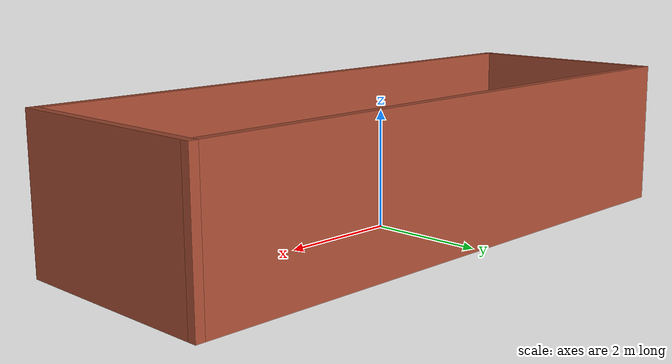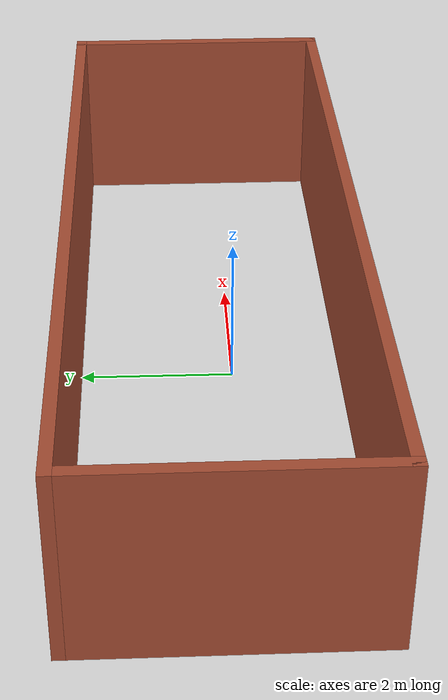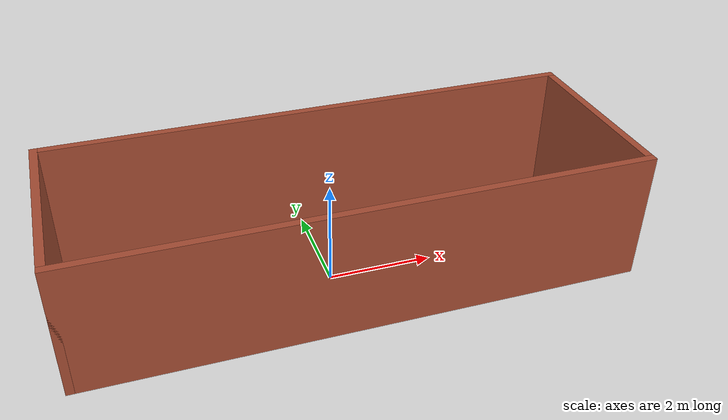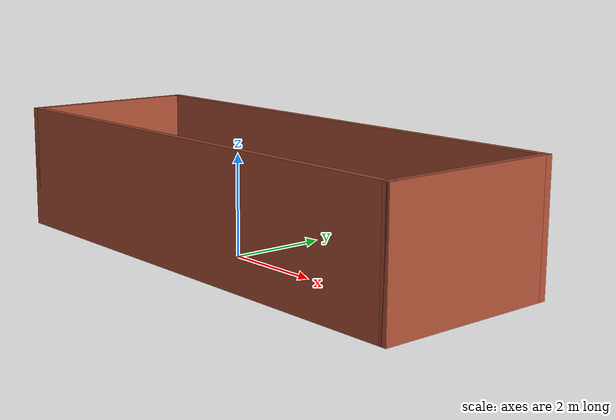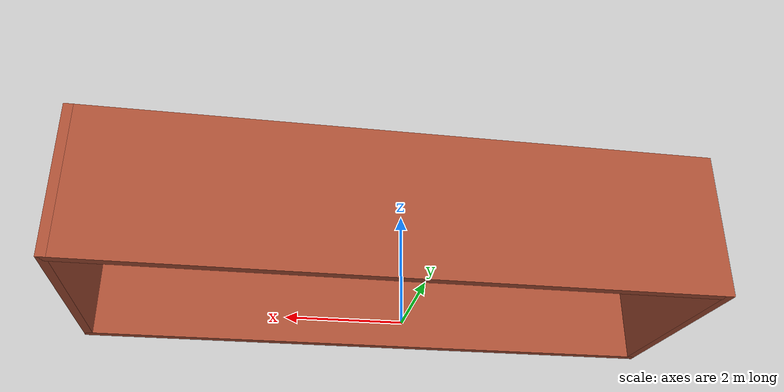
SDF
<?xml version='1.0'?>
<sdf version='1.6'>
  <model name='brick_shack'>
    <pose frame=''>0.285 0.28 0 0 -0 0</pose>
    <link name='Wall_0'>
      <collision name='Wall_0_Collision'>
        <geometry>
          <box>
            <size>10.5 0.15 2.5</size>
          </box>
        </geometry>
        <pose frame=''>0 0 1.25 0 -0 0</pose>
      </collision>
      <visual name='Wall_0_Visual'>
        <pose frame=''>0 0 1.25 0 -0 0</pose>
        <geometry>
          <box>
            <size>10.5 0.15 2.5</size>
          </box>
        </geometry>
        <material>
          <script>
            <uri>file://media/materials/scripts/gazebo.material</uri>
            <name>Gazebo/Bricks</name>
          </script>
          <ambient>1 1 1 1</ambient>
        </material>
        <meta>
          <layer>0</layer>
        </meta>
      </visual>
      <pose frame=''>-0 -1.8 0 0 -0 0</pose>
    </link>
    <link name='Wall_2'>
      <collision name='Wall_2_Collision'>
        <geometry>
          <box>
            <size>3.75 0.15 2.5</size>
          </box>
        </geometry>
        <pose frame=''>0 0 1.25 0 -0 0</pose>
      </collision>
      <visual name='Wall_2_Visual'>
        <pose frame=''>0 0 1.25 0 -0 0</pose>
        <geometry>
          <box>
            <size>3.75 0.15 2.5</size>
          </box>
        </geometry>
        <material>
          <script>
            <uri>file://media/materials/scripts/gazebo.material</uri>
            <name>Gazebo/Bricks</name>
          </script>
          <ambient>1 1 1 1</ambient>
        </material>
        <meta>
          <layer>0</layer>
        </meta>
      </visual>
      <pose frame=''>5.175 0 0 0 -0 1.5708</pose>
    </link>
    <link name='Wall_3'>
      <collision name='Wall_3_Collision'>
        <geometry>
          <box>
            <size>10.5 0.15 2.5</size>
          </box>
        </geometry>
        <pose frame=''>0 0 1.25 0 -0 0</pose>
      </collision>
      <visual name='Wall_3_Visual'>
        <pose frame=''>0 0 1.25 0 -0 0</pose>
        <geometry>
          <box>
            <size>10.5 0.15 2.5</size>
          </box>
        </geometry>
        <material>
          <script>
            <uri>file://media/materials/scripts/gazebo.material</uri>
            <name>Gazebo/Bricks</name>
          </script>
          <ambient>1 1 1 1</ambient>
        </material>
        <meta>
          <layer>0</layer>
        </meta>
      </visual>
      <pose frame=''>-0 1.8 0 0 -0 3.14159</pose>
    </link>
    <link name='Wall_4'>
      <collision name='Wall_4_Collision'>
        <geometry>
          <box>
            <size>3.75 0.15 2.5</size>
          </box>
        </geometry>
        <pose frame=''>0 0 1.25 0 -0 0</pose>
      </collision>
      <visual name='Wall_4_Visual'>
        <pose frame=''>0 0 1.25 0 -0 0</pose>
        <geometry>
          <box>
            <size>3.75 0.15 2.5</size>
          </box>
        </geometry>
        <material>
          <script>
            <uri>file://media/materials/scripts/gazebo.material</uri>
            <name>Gazebo/Bricks</name>
          </script>
          <ambient>1 1 1 1</ambient>
        </material>
        <meta>
          <layer>0</layer>
        </meta>
      </visual>
      <pose frame=''>-5.175 0 0 0 -0 -1.5708</pose>
    </link>
    <static>1</static>
  </model>
</sdf>
